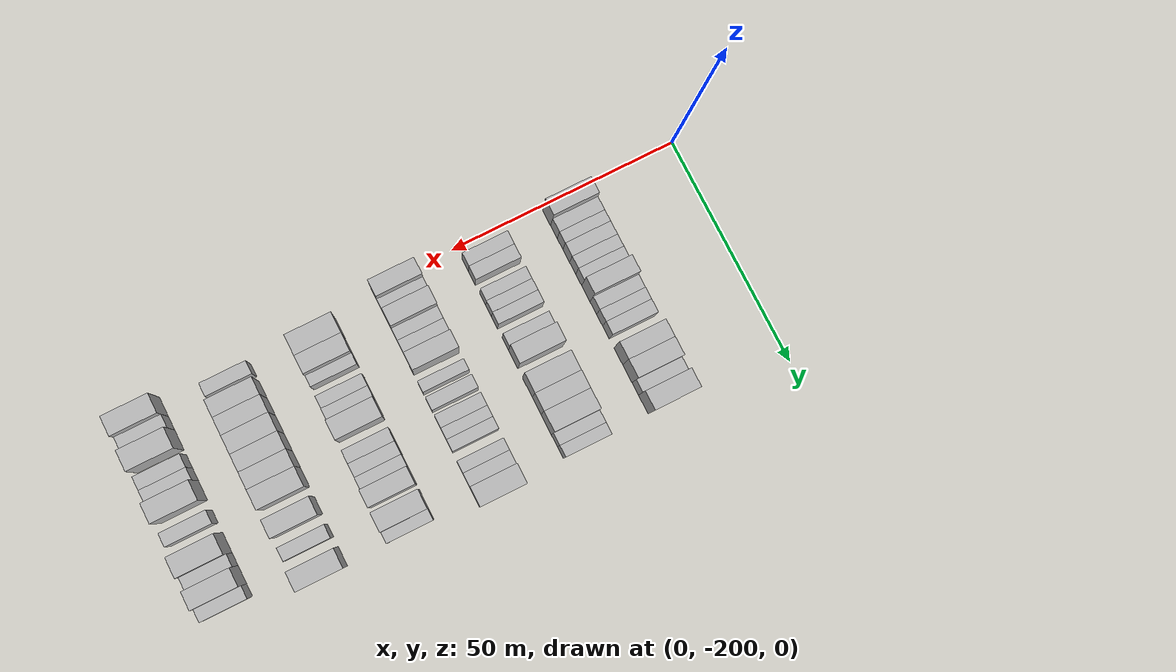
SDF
<sdf version="1.6">
 <world name="default">
  <model name="building_39">
   <static>1</static>
   <pose>25.0000 -197.4959 0 0.000000 0.000000 0.000000</pose>
   <link name="link">
    <pose>0 0 4.50 0 0 0</pose>
    <collision name="collision"><geometry><box><size>10.0000 3.6141 9.0000</size></box></geometry></collision>
    <visual name="visual">
     <cast_shadows>0</cast_shadows>
     <geometry><box><size>10.0000 3.6141 9.0000</size></box></geometry>
     <material>
      <script>
       <uri>model://HANNAS_wall/materials/scripts</uri>
       <uri>model://HANNAS_wall/materials/textures</uri>
       <name>vrc/HANNAS_wall</name>
      </script>
     </material>
    </visual>
   </link>
  </model>
  <model name="building_40">
   <static>1</static>
   <pose>25.0000 -194.2174 0 0.000000 0.000000 0.000000</pose>
   <link name="link">
    <pose>0 0 3.00 0 0 0</pose>
    <collision name="collision"><geometry><box><size>10.0000 2.9428 6.0000</size></box></geometry></collision>
    <visual name="visual">
     <cast_shadows>0</cast_shadows>
     <geometry><box><size>10.0000 2.9428 6.0000</size></box></geometry>
     <material>
      <script>
       <uri>model://HANNAS_wall/materials/scripts</uri>
       <uri>model://HANNAS_wall/materials/textures</uri>
       <name>vrc/HANNAS_wall</name>
      </script>
     </material>
    </visual>
   </link>
  </model>
  <model name="building_41">
   <static>1</static>
   <pose>25.0000 -191.4940 0 0.000000 0.000000 0.000000</pose>
   <link name="link">
    <pose>0 0 3.00 0 0 0</pose>
    <collision name="collision"><geometry><box><size>10.0000 2.5040 6.0000</size></box></geometry></collision>
    <visual name="visual">
     <cast_shadows>0</cast_shadows>
     <geometry><box><size>10.0000 2.5040 6.0000</size></box></geometry>
     <material>
      <script>
       <uri>model://HANNAS_wall/materials/scripts</uri>
       <uri>model://HANNAS_wall/materials/textures</uri>
       <name>vrc/HANNAS_wall</name>
      </script>
     </material>
    </visual>
   </link>
  </model>
  <model name="building_42">
   <static>1</static>
   <pose>25.0000 -188.7656 0 0.000000 0.000000 0.000000</pose>
   <link name="link">
    <pose>0 0 3.00 0 0 0</pose>
    <collision name="collision"><geometry><box><size>10.0000 2.9529 6.0000</size></box></geometry></collision>
    <visual name="visual">
     <cast_shadows>0</cast_shadows>
     <geometry><box><size>10.0000 2.9529 6.0000</size></box></geometry>
     <material>
      <script>
       <uri>model://HANNAS_wall/materials/scripts</uri>
       <uri>model://HANNAS_wall/materials/textures</uri>
       <name>vrc/HANNAS_wall</name>
      </script>
     </material>
    </visual>
   </link>
  </model>
  <model name="building_43">
   <static>1</static>
   <pose>25.0000 -185.9451 0 0.000000 0.000000 0.000000</pose>
   <link name="link">
    <pose>0 0 3.00 0 0 0</pose>
    <collision name="collision"><geometry><box><size>10.0000 2.6881 6.0000</size></box></geometry></collision>
    <visual name="visual">
     <cast_shadows>0</cast_shadows>
     <geometry><box><size>10.0000 2.6881 6.0000</size></box></geometry>
     <material>
      <script>
       <uri>model://HANNAS_wall/materials/scripts</uri>
       <uri>model://HANNAS_wall/materials/textures</uri>
       <name>vrc/HANNAS_wall</name>
      </script>
     </material>
    </visual>
   </link>
  </model>
  <model name="building_44">
   <static>1</static>
   <pose>25.0000 -183.2891 0 0.000000 0.000000 0.000000</pose>
   <link name="link">
    <pose>0 0 3.00 0 0 0</pose>
    <collision name="collision"><geometry><box><size>10.0000 2.6239 6.0000</size></box></geometry></collision>
    <visual name="visual">
     <cast_shadows>0</cast_shadows>
     <geometry><box><size>10.0000 2.6239 6.0000</size></box></geometry>
     <material>
      <script>
       <uri>model://HANNAS_wall/materials/scripts</uri>
       <uri>model://HANNAS_wall/materials/textures</uri>
       <name>vrc/HANNAS_wall</name>
      </script>
     </material>
    </visual>
   </link>
  </model>
  <model name="building_45">
   <static>1</static>
   <pose>25.0000 -180.1494 0 0.000000 0.000000 0.000000</pose>
   <link name="link">
    <pose>0 0 4.50 0 0 0</pose>
    <collision name="collision"><geometry><box><size>10.0000 3.6555 9.0000</size></box></geometry></collision>
    <visual name="visual">
     <cast_shadows>0</cast_shadows>
     <geometry><box><size>10.0000 3.6555 9.0000</size></box></geometry>
     <material>
      <script>
       <uri>model://HANNAS_wall/materials/scripts</uri>
       <uri>model://HANNAS_wall/materials/textures</uri>
       <name>vrc/HANNAS_wall</name>
      </script>
     </material>
    </visual>
   </link>
  </model>
  <model name="building_46">
   <static>1</static>
   <pose>25.0000 -176.8886 0 0.000000 0.000000 0.000000</pose>
   <link name="link">
    <pose>0 0 3.00 0 0 0</pose>
    <collision name="collision"><geometry><box><size>10.0000 2.8661 6.0000</size></box></geometry></collision>
    <visual name="visual">
     <cast_shadows>0</cast_shadows>
     <geometry><box><size>10.0000 2.8661 6.0000</size></box></geometry>
     <material>
      <script>
       <uri>model://HANNAS_wall/materials/scripts</uri>
       <uri>model://HANNAS_wall/materials/textures</uri>
       <name>vrc/HANNAS_wall</name>
      </script>
     </material>
    </visual>
   </link>
  </model>
  <model name="building_47">
   <static>1</static>
   <pose>25.0000 -174.1416 0 0.000000 0.000000 0.000000</pose>
   <link name="link">
    <pose>0 0 3.00 0 0 0</pose>
    <collision name="collision"><geometry><box><size>10.0000 2.6281 6.0000</size></box></geometry></collision>
    <visual name="visual">
     <cast_shadows>0</cast_shadows>
     <geometry><box><size>10.0000 2.6281 6.0000</size></box></geometry>
     <material>
      <script>
       <uri>model://HANNAS_wall/materials/scripts</uri>
       <uri>model://HANNAS_wall/materials/textures</uri>
       <name>vrc/HANNAS_wall</name>
      </script>
     </material>
    </visual>
   </link>
  </model>
  <model name="building_48">
   <static>1</static>
   <pose>25.0000 -171.3936 0 0.000000 0.000000 0.000000</pose>
   <link name="link">
    <pose>0 0 3.00 0 0 0</pose>
    <collision name="collision"><geometry><box><size>10.0000 2.8678 6.0000</size></box></geometry></collision>
    <visual name="visual">
     <cast_shadows>0</cast_shadows>
     <geometry><box><size>10.0000 2.8678 6.0000</size></box></geometry>
     <material>
      <script>
       <uri>model://HANNAS_wall/materials/scripts</uri>
       <uri>model://HANNAS_wall/materials/textures</uri>
       <name>vrc/HANNAS_wall</name>
      </script>
     </material>
    </visual>
   </link>
  </model>
  <model name="building_49">
   <static>1</static>
   <pose>25.0000 -166.0594 0 0.000000 0.000000 0.000000</pose>
   <link name="link">
    <pose>0 0 4.50 0 0 0</pose>
    <collision name="collision"><geometry><box><size>10.0000 3.8006 9.0000</size></box></geometry></collision>
    <visual name="visual">
     <cast_shadows>0</cast_shadows>
     <geometry><box><size>10.0000 3.8006 9.0000</size></box></geometry>
     <material>
      <script>
       <uri>model://HANNAS_wall/materials/scripts</uri>
       <uri>model://HANNAS_wall/materials/textures</uri>
       <name>vrc/HANNAS_wall</name>
      </script>
     </material>
    </visual>
   </link>
  </model>
  <model name="building_50">
   <static>1</static>
   <pose>25.0000 -162.1628 0 0.000000 0.000000 0.000000</pose>
   <link name="link">
    <pose>0 0 4.50 0 0 0</pose>
    <collision name="collision"><geometry><box><size>10.0000 3.9927 9.0000</size></box></geometry></collision>
    <visual name="visual">
     <cast_shadows>0</cast_shadows>
     <geometry><box><size>10.0000 3.9927 9.0000</size></box></geometry>
     <material>
      <script>
       <uri>model://HANNAS_wall/materials/scripts</uri>
       <uri>model://HANNAS_wall/materials/textures</uri>
       <name>vrc/HANNAS_wall</name>
      </script>
     </material>
    </visual>
   </link>
  </model>
  <model name="building_51">
   <static>1</static>
   <pose>25.0000 -158.7779 0 0.000000 0.000000 0.000000</pose>
   <link name="link">
    <pose>0 0 3.00 0 0 0</pose>
    <collision name="collision"><geometry><box><size>10.0000 2.7770 6.0000</size></box></geometry></collision>
    <visual name="visual">
     <cast_shadows>0</cast_shadows>
     <geometry><box><size>10.0000 2.7770 6.0000</size></box></geometry>
     <material>
      <script>
       <uri>model://HANNAS_wall/materials/scripts</uri>
       <uri>model://HANNAS_wall/materials/textures</uri>
       <name>vrc/HANNAS_wall</name>
      </script>
     </material>
    </visual>
   </link>
  </model>
  <model name="building_52">
   <static>1</static>
   <pose>25.0000 -155.3293 0 0.000000 0.000000 0.000000</pose>
   <link name="link">
    <pose>0 0 4.50 0 0 0</pose>
    <collision name="collision"><geometry><box><size>10.0000 4.1204 9.0000</size></box></geometry></collision>
    <visual name="visual">
     <cast_shadows>0</cast_shadows>
     <geometry><box><size>10.0000 4.1204 9.0000</size></box></geometry>
     <material>
      <script>
       <uri>model://HANNAS_wall/materials/scripts</uri>
       <uri>model://HANNAS_wall/materials/textures</uri>
       <name>vrc/HANNAS_wall</name>
      </script>
     </material>
    </visual>
   </link>
  </model>
  <model name="building_223">
   <static>1</static>
   <pose>44.0000 -196.0223 0 0.000000 0.000000 0.000000</pose>
   <link name="link">
    <pose>0 0 3.00 0 0 0</pose>
    <collision name="collision"><geometry><box><size>10.0000 2.9548 6.0000</size></box></geometry></collision>
    <visual name="visual">
     <cast_shadows>0</cast_shadows>
     <geometry><box><size>10.0000 2.9548 6.0000</size></box></geometry>
     <material>
      <script>
       <uri>model://HANNAS_wall/materials/scripts</uri>
       <uri>model://HANNAS_wall/materials/textures</uri>
       <name>vrc/HANNAS_wall</name>
      </script>
     </material>
    </visual>
   </link>
  </model>
  <model name="building_224">
   <static>1</static>
   <pose>44.0000 -193.0504 0 0.000000 0.000000 0.000000</pose>
   <link name="link">
    <pose>0 0 3.00 0 0 0</pose>
    <collision name="collision"><geometry><box><size>10.0000 2.9890 6.0000</size></box></geometry></collision>
    <visual name="visual">
     <cast_shadows>0</cast_shadows>
     <geometry><box><size>10.0000 2.9890 6.0000</size></box></geometry>
     <material>
      <script>
       <uri>model://HANNAS_wall/materials/scripts</uri>
       <uri>model://HANNAS_wall/materials/textures</uri>
       <name>vrc/HANNAS_wall</name>
      </script>
     </material>
    </visual>
   </link>
  </model>
  <model name="building_225">
   <static>1</static>
   <pose>44.0000 -188.2141 0 0.000000 0.000000 0.000000</pose>
   <link name="link">
    <pose>0 0 3.00 0 0 0</pose>
    <collision name="collision"><geometry><box><size>10.0000 2.6835 6.0000</size></box></geometry></collision>
    <visual name="visual">
     <cast_shadows>0</cast_shadows>
     <geometry><box><size>10.0000 2.6835 6.0000</size></box></geometry>
     <material>
      <script>
       <uri>model://HANNAS_wall/materials/scripts</uri>
       <uri>model://HANNAS_wall/materials/textures</uri>
       <name>vrc/HANNAS_wall</name>
      </script>
     </material>
    </visual>
   </link>
  </model>
  <model name="building_226">
   <static>1</static>
   <pose>44.0000 -185.5968 0 0.000000 0.000000 0.000000</pose>
   <link name="link">
    <pose>0 0 3.00 0 0 0</pose>
    <collision name="collision"><geometry><box><size>10.0000 2.5512 6.0000</size></box></geometry></collision>
    <visual name="visual">
     <cast_shadows>0</cast_shadows>
     <geometry><box><size>10.0000 2.5512 6.0000</size></box></geometry>
     <material>
      <script>
       <uri>model://HANNAS_wall/materials/scripts</uri>
       <uri>model://HANNAS_wall/materials/textures</uri>
       <name>vrc/HANNAS_wall</name>
      </script>
     </material>
    </visual>
   </link>
  </model>
  <model name="building_227">
   <static>1</static>
   <pose>44.0000 -182.9923 0 0.000000 0.000000 0.000000</pose>
   <link name="link">
    <pose>0 0 3.00 0 0 0</pose>
    <collision name="collision"><geometry><box><size>10.0000 2.6577 6.0000</size></box></geometry></collision>
    <visual name="visual">
     <cast_shadows>0</cast_shadows>
     <geometry><box><size>10.0000 2.6577 6.0000</size></box></geometry>
     <material>
      <script>
       <uri>model://HANNAS_wall/materials/scripts</uri>
       <uri>model://HANNAS_wall/materials/textures</uri>
       <name>vrc/HANNAS_wall</name>
      </script>
     </material>
    </visual>
   </link>
  </model>
  <model name="building_228">
   <static>1</static>
   <pose>44.0000 -178.2183 0 0.000000 0.000000 0.000000</pose>
   <link name="link">
    <pose>0 0 3.00 0 0 0</pose>
    <collision name="collision"><geometry><box><size>10.0000 2.8905 6.0000</size></box></geometry></collision>
    <visual name="visual">
     <cast_shadows>0</cast_shadows>
     <geometry><box><size>10.0000 2.8905 6.0000</size></box></geometry>
     <material>
      <script>
       <uri>model://HANNAS_wall/materials/scripts</uri>
       <uri>model://HANNAS_wall/materials/textures</uri>
       <name>vrc/HANNAS_wall</name>
      </script>
     </material>
    </visual>
   </link>
  </model>
  <model name="building_229">
   <static>1</static>
   <pose>44.0000 -174.7492 0 0.000000 0.000000 0.000000</pose>
   <link name="link">
    <pose>0 0 4.50 0 0 0</pose>
    <collision name="collision"><geometry><box><size>10.0000 4.0476 9.0000</size></box></geometry></collision>
    <visual name="visual">
     <cast_shadows>0</cast_shadows>
     <geometry><box><size>10.0000 4.0476 9.0000</size></box></geometry>
     <material>
      <script>
       <uri>model://HANNAS_wall/materials/scripts</uri>
       <uri>model://HANNAS_wall/materials/textures</uri>
       <name>vrc/HANNAS_wall</name>
      </script>
     </material>
    </visual>
   </link>
  </model>
  <model name="building_230">
   <static>1</static>
   <pose>44.0000 -168.5488 0 0.000000 0.000000 0.000000</pose>
   <link name="link">
    <pose>0 0 4.50 0 0 0</pose>
    <collision name="collision"><geometry><box><size>10.0000 4.3531 9.0000</size></box></geometry></collision>
    <visual name="visual">
     <cast_shadows>0</cast_shadows>
     <geometry><box><size>10.0000 4.3531 9.0000</size></box></geometry>
     <material>
      <script>
       <uri>model://HANNAS_wall/materials/scripts</uri>
       <uri>model://HANNAS_wall/materials/textures</uri>
       <name>vrc/HANNAS_wall</name>
      </script>
     </material>
    </visual>
   </link>
  </model>
  <model name="building_231">
   <static>1</static>
   <pose>44.0000 -164.4514 0 0.000000 0.000000 0.000000</pose>
   <link name="link">
    <pose>0 0 4.50 0 0 0</pose>
    <collision name="collision"><geometry><box><size>10.0000 3.8418 9.0000</size></box></geometry></collision>
    <visual name="visual">
     <cast_shadows>0</cast_shadows>
     <geometry><box><size>10.0000 3.8418 9.0000</size></box></geometry>
     <material>
      <script>
       <uri>model://HANNAS_wall/materials/scripts</uri>
       <uri>model://HANNAS_wall/materials/textures</uri>
       <name>vrc/HANNAS_wall</name>
      </script>
     </material>
    </visual>
   </link>
  </model>
  <model name="building_232">
   <static>1</static>
   <pose>44.0000 -160.3014 0 0.000000 0.000000 0.000000</pose>
   <link name="link">
    <pose>0 0 4.50 0 0 0</pose>
    <collision name="collision"><geometry><box><size>10.0000 4.4582 9.0000</size></box></geometry></collision>
    <visual name="visual">
     <cast_shadows>0</cast_shadows>
     <geometry><box><size>10.0000 4.4582 9.0000</size></box></geometry>
     <material>
      <script>
       <uri>model://HANNAS_wall/materials/scripts</uri>
       <uri>model://HANNAS_wall/materials/textures</uri>
       <name>vrc/HANNAS_wall</name>
      </script>
     </material>
    </visual>
   </link>
  </model>
  <model name="building_233">
   <static>1</static>
   <pose>44.0000 -156.7482 0 0.000000 0.000000 0.000000</pose>
   <link name="link">
    <pose>0 0 3.00 0 0 0</pose>
    <collision name="collision"><geometry><box><size>10.0000 2.6480 6.0000</size></box></geometry></collision>
    <visual name="visual">
     <cast_shadows>0</cast_shadows>
     <geometry><box><size>10.0000 2.6480 6.0000</size></box></geometry>
     <material>
      <script>
       <uri>model://HANNAS_wall/materials/scripts</uri>
       <uri>model://HANNAS_wall/materials/textures</uri>
       <name>vrc/HANNAS_wall</name>
      </script>
     </material>
    </visual>
   </link>
  </model>
  <model name="building_234">
   <static>1</static>
   <pose>44.0000 -154.1500 0 0.000000 0.000000 0.000000</pose>
   <link name="link">
    <pose>0 0 3.00 0 0 0</pose>
    <collision name="collision"><geometry><box><size>10.0000 2.5484 6.0000</size></box></geometry></collision>
    <visual name="visual">
     <cast_shadows>0</cast_shadows>
     <geometry><box><size>10.0000 2.5484 6.0000</size></box></geometry>
     <material>
      <script>
       <uri>model://HANNAS_wall/materials/scripts</uri>
       <uri>model://HANNAS_wall/materials/textures</uri>
       <name>vrc/HANNAS_wall</name>
      </script>
     </material>
    </visual>
   </link>
  </model>
  <model name="building_396">
   <static>1</static>
   <pose>63.0000 -198.5339 0 0.000000 0.000000 0.000000</pose>
   <link name="link">
    <pose>0 0 4.50 0 0 0</pose>
    <collision name="collision"><geometry><box><size>10.0000 3.6355 9.0000</size></box></geometry></collision>
    <visual name="visual">
     <cast_shadows>0</cast_shadows>
     <geometry><box><size>10.0000 3.6355 9.0000</size></box></geometry>
     <material>
      <script>
       <uri>model://HANNAS_wall/materials/scripts</uri>
       <uri>model://HANNAS_wall/materials/textures</uri>
       <name>vrc/HANNAS_wall</name>
      </script>
     </material>
    </visual>
   </link>
  </model>
  <model name="building_397">
   <static>1</static>
   <pose>63.0000 -195.4510 0 0.000000 0.000000 0.000000</pose>
   <link name="link">
    <pose>0 0 3.00 0 0 0</pose>
    <collision name="collision"><geometry><box><size>10.0000 2.5305 6.0000</size></box></geometry></collision>
    <visual name="visual">
     <cast_shadows>0</cast_shadows>
     <geometry><box><size>10.0000 2.5305 6.0000</size></box></geometry>
     <material>
      <script>
       <uri>model://HANNAS_wall/materials/scripts</uri>
       <uri>model://HANNAS_wall/materials/textures</uri>
       <name>vrc/HANNAS_wall</name>
      </script>
     </material>
    </visual>
   </link>
  </model>
  <model name="building_398">
   <static>1</static>
   <pose>63.0000 -192.2279 0 0.000000 0.000000 0.000000</pose>
   <link name="link">
    <pose>0 0 4.50 0 0 0</pose>
    <collision name="collision"><geometry><box><size>10.0000 3.9156 9.0000</size></box></geometry></collision>
    <visual name="visual">
     <cast_shadows>0</cast_shadows>
     <geometry><box><size>10.0000 3.9156 9.0000</size></box></geometry>
     <material>
      <script>
       <uri>model://HANNAS_wall/materials/scripts</uri>
       <uri>model://HANNAS_wall/materials/textures</uri>
       <name>vrc/HANNAS_wall</name>
      </script>
     </material>
    </visual>
   </link>
  </model>
  <model name="building_399">
   <static>1</static>
   <pose>63.0000 -188.9342 0 0.000000 0.000000 0.000000</pose>
   <link name="link">
    <pose>0 0 3.00 0 0 0</pose>
    <collision name="collision"><geometry><box><size>10.0000 2.6719 6.0000</size></box></geometry></collision>
    <visual name="visual">
     <cast_shadows>0</cast_shadows>
     <geometry><box><size>10.0000 2.6719 6.0000</size></box></geometry>
     <material>
      <script>
       <uri>model://HANNAS_wall/materials/scripts</uri>
       <uri>model://HANNAS_wall/materials/textures</uri>
       <name>vrc/HANNAS_wall</name>
      </script>
     </material>
    </visual>
   </link>
  </model>
  <model name="building_400">
   <static>1</static>
   <pose>63.0000 -186.1005 0 0.000000 0.000000 0.000000</pose>
   <link name="link">
    <pose>0 0 3.00 0 0 0</pose>
    <collision name="collision"><geometry><box><size>10.0000 2.9955 6.0000</size></box></geometry></collision>
    <visual name="visual">
     <cast_shadows>0</cast_shadows>
     <geometry><box><size>10.0000 2.9955 6.0000</size></box></geometry>
     <material>
      <script>
       <uri>model://HANNAS_wall/materials/scripts</uri>
       <uri>model://HANNAS_wall/materials/textures</uri>
       <name>vrc/HANNAS_wall</name>
      </script>
     </material>
    </visual>
   </link>
  </model>
  <model name="building_401">
   <static>1</static>
   <pose>63.0000 -182.6701 0 0.000000 0.000000 0.000000</pose>
   <link name="link">
    <pose>0 0 4.50 0 0 0</pose>
    <collision name="collision"><geometry><box><size>10.0000 3.8652 9.0000</size></box></geometry></collision>
    <visual name="visual">
     <cast_shadows>0</cast_shadows>
     <geometry><box><size>10.0000 3.8652 9.0000</size></box></geometry>
     <material>
      <script>
       <uri>model://HANNAS_wall/materials/scripts</uri>
       <uri>model://HANNAS_wall/materials/textures</uri>
       <name>vrc/HANNAS_wall</name>
      </script>
     </material>
    </visual>
   </link>
  </model>
  <model name="building_402">
   <static>1</static>
   <pose>63.0000 -177.5221 0 0.000000 0.000000 0.000000</pose>
   <link name="link">
    <pose>0 0 3.00 0 0 0</pose>
    <collision name="collision"><geometry><box><size>10.0000 2.4307 6.0000</size></box></geometry></collision>
    <visual name="visual">
     <cast_shadows>0</cast_shadows>
     <geometry><box><size>10.0000 2.4307 6.0000</size></box></geometry>
     <material>
      <script>
       <uri>model://HANNAS_wall/materials/scripts</uri>
       <uri>model://HANNAS_wall/materials/textures</uri>
       <name>vrc/HANNAS_wall</name>
      </script>
     </material>
    </visual>
   </link>
  </model>
  <model name="building_403">
   <static>1</static>
   <pose>63.0000 -173.8610 0 0.000000 0.000000 0.000000</pose>
   <link name="link">
    <pose>0 0 3.00 0 0 0</pose>
    <collision name="collision"><geometry><box><size>10.0000 2.8916 6.0000</size></box></geometry></collision>
    <visual name="visual">
     <cast_shadows>0</cast_shadows>
     <geometry><box><size>10.0000 2.8916 6.0000</size></box></geometry>
     <material>
      <script>
       <uri>model://HANNAS_wall/materials/scripts</uri>
       <uri>model://HANNAS_wall/materials/textures</uri>
       <name>vrc/HANNAS_wall</name>
      </script>
     </material>
    </visual>
   </link>
  </model>
  <model name="building_404">
   <static>1</static>
   <pose>63.0000 -170.0073 0 0.000000 0.000000 0.000000</pose>
   <link name="link">
    <pose>0 0 3.00 0 0 0</pose>
    <collision name="collision"><geometry><box><size>10.0000 2.8158 6.0000</size></box></geometry></collision>
    <visual name="visual">
     <cast_shadows>0</cast_shadows>
     <geometry><box><size>10.0000 2.8158 6.0000</size></box></geometry>
     <material>
      <script>
       <uri>model://HANNAS_wall/materials/scripts</uri>
       <uri>model://HANNAS_wall/materials/textures</uri>
       <name>vrc/HANNAS_wall</name>
      </script>
     </material>
    </visual>
   </link>
  </model>
  <model name="building_405">
   <static>1</static>
   <pose>63.0000 -167.3830 0 0.000000 0.000000 0.000000</pose>
   <link name="link">
    <pose>0 0 3.00 0 0 0</pose>
    <collision name="collision"><geometry><box><size>10.0000 2.4328 6.0000</size></box></geometry></collision>
    <visual name="visual">
     <cast_shadows>0</cast_shadows>
     <geometry><box><size>10.0000 2.4328 6.0000</size></box></geometry>
     <material>
      <script>
       <uri>model://HANNAS_wall/materials/scripts</uri>
       <uri>model://HANNAS_wall/materials/textures</uri>
       <name>vrc/HANNAS_wall</name>
      </script>
     </material>
    </visual>
   </link>
  </model>
  <model name="building_406">
   <static>1</static>
   <pose>63.0000 -164.8621 0 0.000000 0.000000 0.000000</pose>
   <link name="link">
    <pose>0 0 3.00 0 0 0</pose>
    <collision name="collision"><geometry><box><size>10.0000 2.6091 6.0000</size></box></geometry></collision>
    <visual name="visual">
     <cast_shadows>0</cast_shadows>
     <geometry><box><size>10.0000 2.6091 6.0000</size></box></geometry>
     <material>
      <script>
       <uri>model://HANNAS_wall/materials/scripts</uri>
       <uri>model://HANNAS_wall/materials/textures</uri>
       <name>vrc/HANNAS_wall</name>
      </script>
     </material>
    </visual>
   </link>
  </model>
  <model name="building_407">
   <static>1</static>
   <pose>63.0000 -160.2697 0 0.000000 0.000000 0.000000</pose>
   <link name="link">
    <pose>0 0 3.00 0 0 0</pose>
    <collision name="collision"><geometry><box><size>10.0000 2.5756 6.0000</size></box></geometry></collision>
    <visual name="visual">
     <cast_shadows>0</cast_shadows>
     <geometry><box><size>10.0000 2.5756 6.0000</size></box></geometry>
     <material>
      <script>
       <uri>model://HANNAS_wall/materials/scripts</uri>
       <uri>model://HANNAS_wall/materials/textures</uri>
       <name>vrc/HANNAS_wall</name>
      </script>
     </material>
    </visual>
   </link>
  </model>
  <model name="building_408">
   <static>1</static>
   <pose>63.0000 -157.5029 0 0.000000 0.000000 0.000000</pose>
   <link name="link">
    <pose>0 0 3.00 0 0 0</pose>
    <collision name="collision"><geometry><box><size>10.0000 2.9581 6.0000</size></box></geometry></collision>
    <visual name="visual">
     <cast_shadows>0</cast_shadows>
     <geometry><box><size>10.0000 2.9581 6.0000</size></box></geometry>
     <material>
      <script>
       <uri>model://HANNAS_wall/materials/scripts</uri>
       <uri>model://HANNAS_wall/materials/textures</uri>
       <name>vrc/HANNAS_wall</name>
      </script>
     </material>
    </visual>
   </link>
  </model>
  <model name="building_409">
   <static>1</static>
   <pose>63.0000 -153.8929 0 0.000000 0.000000 0.000000</pose>
   <link name="link">
    <pose>0 0 4.50 0 0 0</pose>
    <collision name="collision"><geometry><box><size>10.0000 4.2618 9.0000</size></box></geometry></collision>
    <visual name="visual">
     <cast_shadows>0</cast_shadows>
     <geometry><box><size>10.0000 4.2618 9.0000</size></box></geometry>
     <material>
      <script>
       <uri>model://HANNAS_wall/materials/scripts</uri>
       <uri>model://HANNAS_wall/materials/textures</uri>
       <name>vrc/HANNAS_wall</name>
      </script>
     </material>
    </visual>
   </link>
  </model>
  <model name="building_558">
   <static>1</static>
   <pose>82.0000 -195.6227 0 0.000000 0.000000 0.000000</pose>
   <link name="link">
    <pose>0 0 4.50 0 0 0</pose>
    <collision name="collision"><geometry><box><size>10.0000 4.4819 9.0000</size></box></geometry></collision>
    <visual name="visual">
     <cast_shadows>0</cast_shadows>
     <geometry><box><size>10.0000 4.4819 9.0000</size></box></geometry>
     <material>
      <script>
       <uri>model://HANNAS_wall/materials/scripts</uri>
       <uri>model://HANNAS_wall/materials/textures</uri>
       <name>vrc/HANNAS_wall</name>
      </script>
     </material>
    </visual>
   </link>
  </model>
  <model name="building_559">
   <static>1</static>
   <pose>82.0000 -191.3908 0 0.000000 0.000000 0.000000</pose>
   <link name="link">
    <pose>0 0 4.50 0 0 0</pose>
    <collision name="collision"><geometry><box><size>10.0000 3.9819 9.0000</size></box></geometry></collision>
    <visual name="visual">
     <cast_shadows>0</cast_shadows>
     <geometry><box><size>10.0000 3.9819 9.0000</size></box></geometry>
     <material>
      <script>
       <uri>model://HANNAS_wall/materials/scripts</uri>
       <uri>model://HANNAS_wall/materials/textures</uri>
       <name>vrc/HANNAS_wall</name>
      </script>
     </material>
    </visual>
   </link>
  </model>
  <model name="building_560">
   <static>1</static>
   <pose>82.0000 -188.1809 0 0.000000 0.000000 0.000000</pose>
   <link name="link">
    <pose>0 0 3.00 0 0 0</pose>
    <collision name="collision"><geometry><box><size>10.0000 2.4380 6.0000</size></box></geometry></collision>
    <visual name="visual">
     <cast_shadows>0</cast_shadows>
     <geometry><box><size>10.0000 2.4380 6.0000</size></box></geometry>
     <material>
      <script>
       <uri>model://HANNAS_wall/materials/scripts</uri>
       <uri>model://HANNAS_wall/materials/textures</uri>
       <name>vrc/HANNAS_wall</name>
      </script>
     </material>
    </visual>
   </link>
  </model>
  <model name="building_561">
   <static>1</static>
   <pose>82.0000 -183.6275 0 0.000000 0.000000 0.000000</pose>
   <link name="link">
    <pose>0 0 3.00 0 0 0</pose>
    <collision name="collision"><geometry><box><size>10.0000 2.6688 6.0000</size></box></geometry></collision>
    <visual name="visual">
     <cast_shadows>0</cast_shadows>
     <geometry><box><size>10.0000 2.6688 6.0000</size></box></geometry>
     <material>
      <script>
       <uri>model://HANNAS_wall/materials/scripts</uri>
       <uri>model://HANNAS_wall/materials/textures</uri>
       <name>vrc/HANNAS_wall</name>
      </script>
     </material>
    </visual>
   </link>
  </model>
  <model name="building_562">
   <static>1</static>
   <pose>82.0000 -180.9532 0 0.000000 0.000000 0.000000</pose>
   <link name="link">
    <pose>0 0 3.00 0 0 0</pose>
    <collision name="collision"><geometry><box><size>10.0000 2.6799 6.0000</size></box></geometry></collision>
    <visual name="visual">
     <cast_shadows>0</cast_shadows>
     <geometry><box><size>10.0000 2.6799 6.0000</size></box></geometry>
     <material>
      <script>
       <uri>model://HANNAS_wall/materials/scripts</uri>
       <uri>model://HANNAS_wall/materials/textures</uri>
       <name>vrc/HANNAS_wall</name>
      </script>
     </material>
    </visual>
   </link>
  </model>
  <model name="building_563">
   <static>1</static>
   <pose>82.0000 -177.4640 0 0.000000 0.000000 0.000000</pose>
   <link name="link">
    <pose>0 0 4.50 0 0 0</pose>
    <collision name="collision"><geometry><box><size>10.0000 4.2984 9.0000</size></box></geometry></collision>
    <visual name="visual">
     <cast_shadows>0</cast_shadows>
     <geometry><box><size>10.0000 4.2984 9.0000</size></box></geometry>
     <material>
      <script>
       <uri>model://HANNAS_wall/materials/scripts</uri>
       <uri>model://HANNAS_wall/materials/textures</uri>
       <name>vrc/HANNAS_wall</name>
      </script>
     </material>
    </visual>
   </link>
  </model>
  <model name="building_564">
   <static>1</static>
   <pose>82.0000 -171.8599 0 0.000000 0.000000 0.000000</pose>
   <link name="link">
    <pose>0 0 3.00 0 0 0</pose>
    <collision name="collision"><geometry><box><size>10.0000 2.9099 6.0000</size></box></geometry></collision>
    <visual name="visual">
     <cast_shadows>0</cast_shadows>
     <geometry><box><size>10.0000 2.9099 6.0000</size></box></geometry>
     <material>
      <script>
       <uri>model://HANNAS_wall/materials/scripts</uri>
       <uri>model://HANNAS_wall/materials/textures</uri>
       <name>vrc/HANNAS_wall</name>
      </script>
     </material>
    </visual>
   </link>
  </model>
  <model name="building_565">
   <static>1</static>
   <pose>82.0000 -168.9702 0 0.000000 0.000000 0.000000</pose>
   <link name="link">
    <pose>0 0 3.00 0 0 0</pose>
    <collision name="collision"><geometry><box><size>10.0000 2.8695 6.0000</size></box></geometry></collision>
    <visual name="visual">
     <cast_shadows>0</cast_shadows>
     <geometry><box><size>10.0000 2.8695 6.0000</size></box></geometry>
     <material>
      <script>
       <uri>model://HANNAS_wall/materials/scripts</uri>
       <uri>model://HANNAS_wall/materials/textures</uri>
       <name>vrc/HANNAS_wall</name>
      </script>
     </material>
    </visual>
   </link>
  </model>
  <model name="building_566">
   <static>1</static>
   <pose>82.0000 -166.2060 0 0.000000 0.000000 0.000000</pose>
   <link name="link">
    <pose>0 0 3.00 0 0 0</pose>
    <collision name="collision"><geometry><box><size>10.0000 2.6589 6.0000</size></box></geometry></collision>
    <visual name="visual">
     <cast_shadows>0</cast_shadows>
     <geometry><box><size>10.0000 2.6589 6.0000</size></box></geometry>
     <material>
      <script>
       <uri>model://HANNAS_wall/materials/scripts</uri>
       <uri>model://HANNAS_wall/materials/textures</uri>
       <name>vrc/HANNAS_wall</name>
      </script>
     </material>
    </visual>
   </link>
  </model>
  <model name="building_567">
   <static>1</static>
   <pose>82.0000 -162.9906 0 0.000000 0.000000 0.000000</pose>
   <link name="link">
    <pose>0 0 4.50 0 0 0</pose>
    <collision name="collision"><geometry><box><size>10.0000 3.7718 9.0000</size></box></geometry></collision>
    <visual name="visual">
     <cast_shadows>0</cast_shadows>
     <geometry><box><size>10.0000 3.7718 9.0000</size></box></geometry>
     <material>
      <script>
       <uri>model://HANNAS_wall/materials/scripts</uri>
       <uri>model://HANNAS_wall/materials/textures</uri>
       <name>vrc/HANNAS_wall</name>
      </script>
     </material>
    </visual>
   </link>
  </model>
  <model name="building_568">
   <static>1</static>
   <pose>82.0000 -158.0215 0 0.000000 0.000000 0.000000</pose>
   <link name="link">
    <pose>0 0 4.50 0 0 0</pose>
    <collision name="collision"><geometry><box><size>10.0000 4.1664 9.0000</size></box></geometry></collision>
    <visual name="visual">
     <cast_shadows>0</cast_shadows>
     <geometry><box><size>10.0000 4.1664 9.0000</size></box></geometry>
     <material>
      <script>
       <uri>model://HANNAS_wall/materials/scripts</uri>
       <uri>model://HANNAS_wall/materials/textures</uri>
       <name>vrc/HANNAS_wall</name>
      </script>
     </material>
    </visual>
   </link>
  </model>
  <model name="building_569">
   <static>1</static>
   <pose>82.0000 -154.7222 0 0.000000 0.000000 0.000000</pose>
   <link name="link">
    <pose>0 0 3.00 0 0 0</pose>
    <collision name="collision"><geometry><box><size>10.0000 2.4321 6.0000</size></box></geometry></collision>
    <visual name="visual">
     <cast_shadows>0</cast_shadows>
     <geometry><box><size>10.0000 2.4321 6.0000</size></box></geometry>
     <material>
      <script>
       <uri>model://HANNAS_wall/materials/scripts</uri>
       <uri>model://HANNAS_wall/materials/textures</uri>
       <name>vrc/HANNAS_wall</name>
      </script>
     </material>
    </visual>
   </link>
  </model>
  <model name="building_733">
   <static>1</static>
   <pose>101.0000 -195.7880 0 0.000000 0.000000 0.000000</pose>
   <link name="link">
    <pose>0 0 3.00 0 0 0</pose>
    <collision name="collision"><geometry><box><size>10.0000 2.8690 6.0000</size></box></geometry></collision>
    <visual name="visual">
     <cast_shadows>0</cast_shadows>
     <geometry><box><size>10.0000 2.8690 6.0000</size></box></geometry>
     <material>
      <script>
       <uri>model://HANNAS_wall/materials/scripts</uri>
       <uri>model://HANNAS_wall/materials/textures</uri>
       <name>vrc/HANNAS_wall</name>
      </script>
     </material>
    </visual>
   </link>
  </model>
  <model name="building_734">
   <static>1</static>
   <pose>101.0000 -191.4734 0 0.000000 0.000000 0.000000</pose>
   <link name="link">
    <pose>0 0 4.50 0 0 0</pose>
    <collision name="collision"><geometry><box><size>10.0000 3.7602 9.0000</size></box></geometry></collision>
    <visual name="visual">
     <cast_shadows>0</cast_shadows>
     <geometry><box><size>10.0000 3.7602 9.0000</size></box></geometry>
     <material>
      <script>
       <uri>model://HANNAS_wall/materials/scripts</uri>
       <uri>model://HANNAS_wall/materials/textures</uri>
       <name>vrc/HANNAS_wall</name>
      </script>
     </material>
    </visual>
   </link>
  </model>
  <model name="building_735">
   <static>1</static>
   <pose>101.0000 -187.6899 0 0.000000 0.000000 0.000000</pose>
   <link name="link">
    <pose>0 0 4.50 0 0 0</pose>
    <collision name="collision"><geometry><box><size>10.0000 3.8070 9.0000</size></box></geometry></collision>
    <visual name="visual">
     <cast_shadows>0</cast_shadows>
     <geometry><box><size>10.0000 3.8070 9.0000</size></box></geometry>
     <material>
      <script>
       <uri>model://HANNAS_wall/materials/scripts</uri>
       <uri>model://HANNAS_wall/materials/textures</uri>
       <name>vrc/HANNAS_wall</name>
      </script>
     </material>
    </visual>
   </link>
  </model>
  <model name="building_736">
   <static>1</static>
   <pose>101.0000 -183.7917 0 0.000000 0.000000 0.000000</pose>
   <link name="link">
    <pose>0 0 4.50 0 0 0</pose>
    <collision name="collision"><geometry><box><size>10.0000 3.9894 9.0000</size></box></geometry></collision>
    <visual name="visual">
     <cast_shadows>0</cast_shadows>
     <geometry><box><size>10.0000 3.9894 9.0000</size></box></geometry>
     <material>
      <script>
       <uri>model://HANNAS_wall/materials/scripts</uri>
       <uri>model://HANNAS_wall/materials/textures</uri>
       <name>vrc/HANNAS_wall</name>
      </script>
     </material>
    </visual>
   </link>
  </model>
  <model name="building_737">
   <static>1</static>
   <pose>101.0000 -179.9096 0 0.000000 0.000000 0.000000</pose>
   <link name="link">
    <pose>0 0 4.50 0 0 0</pose>
    <collision name="collision"><geometry><box><size>10.0000 3.7747 9.0000</size></box></geometry></collision>
    <visual name="visual">
     <cast_shadows>0</cast_shadows>
     <geometry><box><size>10.0000 3.7747 9.0000</size></box></geometry>
     <material>
      <script>
       <uri>model://HANNAS_wall/materials/scripts</uri>
       <uri>model://HANNAS_wall/materials/textures</uri>
       <name>vrc/HANNAS_wall</name>
      </script>
     </material>
    </visual>
   </link>
  </model>
  <model name="building_738">
   <static>1</static>
   <pose>101.0000 -176.1786 0 0.000000 0.000000 0.000000</pose>
   <link name="link">
    <pose>0 0 4.50 0 0 0</pose>
    <collision name="collision"><geometry><box><size>10.0000 3.6872 9.0000</size></box></geometry></collision>
    <visual name="visual">
     <cast_shadows>0</cast_shadows>
     <geometry><box><size>10.0000 3.6872 9.0000</size></box></geometry>
     <material>
      <script>
       <uri>model://HANNAS_wall/materials/scripts</uri>
       <uri>model://HANNAS_wall/materials/textures</uri>
       <name>vrc/HANNAS_wall</name>
      </script>
     </material>
    </visual>
   </link>
  </model>
  <model name="building_739">
   <static>1</static>
   <pose>101.0000 -172.1977 0 0.000000 0.000000 0.000000</pose>
   <link name="link">
    <pose>0 0 4.50 0 0 0</pose>
    <collision name="collision"><geometry><box><size>10.0000 4.2745 9.0000</size></box></geometry></collision>
    <visual name="visual">
     <cast_shadows>0</cast_shadows>
     <geometry><box><size>10.0000 4.2745 9.0000</size></box></geometry>
     <material>
      <script>
       <uri>model://HANNAS_wall/materials/scripts</uri>
       <uri>model://HANNAS_wall/materials/textures</uri>
       <name>vrc/HANNAS_wall</name>
      </script>
     </material>
    </visual>
   </link>
  </model>
  <model name="building_740">
   <static>1</static>
   <pose>101.0000 -166.1044 0 0.000000 0.000000 0.000000</pose>
   <link name="link">
    <pose>0 0 4.50 0 0 0</pose>
    <collision name="collision"><geometry><box><size>10.0000 3.9121 9.0000</size></box></geometry></collision>
    <visual name="visual">
     <cast_shadows>0</cast_shadows>
     <geometry><box><size>10.0000 3.9121 9.0000</size></box></geometry>
     <material>
      <script>
       <uri>model://HANNAS_wall/materials/scripts</uri>
       <uri>model://HANNAS_wall/materials/textures</uri>
       <name>vrc/HANNAS_wall</name>
      </script>
     </material>
    </visual>
   </link>
  </model>
  <model name="building_741">
   <static>1</static>
   <pose>101.0000 -160.6951 0 0.000000 0.000000 0.000000</pose>
   <link name="link">
    <pose>0 0 3.00 0 0 0</pose>
    <collision name="collision"><geometry><box><size>10.0000 2.9065 6.0000</size></box></geometry></collision>
    <visual name="visual">
     <cast_shadows>0</cast_shadows>
     <geometry><box><size>10.0000 2.9065 6.0000</size></box></geometry>
     <material>
      <script>
       <uri>model://HANNAS_wall/materials/scripts</uri>
       <uri>model://HANNAS_wall/materials/textures</uri>
       <name>vrc/HANNAS_wall</name>
      </script>
     </material>
    </visual>
   </link>
  </model>
  <model name="building_742">
   <static>1</static>
   <pose>101.0000 -155.1457 0 0.000000 0.000000 0.000000</pose>
   <link name="link">
    <pose>0 0 4.50 0 0 0</pose>
    <collision name="collision"><geometry><box><size>10.0000 4.1924 9.0000</size></box></geometry></collision>
    <visual name="visual">
     <cast_shadows>0</cast_shadows>
     <geometry><box><size>10.0000 4.1924 9.0000</size></box></geometry>
     <material>
      <script>
       <uri>model://HANNAS_wall/materials/scripts</uri>
       <uri>model://HANNAS_wall/materials/textures</uri>
       <name>vrc/HANNAS_wall</name>
      </script>
     </material>
    </visual>
   </link>
  </model>
  <model name="building_893">
   <static>1</static>
   <pose>120.0000 -197.1805 0 0.000000 0.000000 0.000000</pose>
   <link name="link">
    <pose>0 0 4.50 0 0 0</pose>
    <collision name="collision"><geometry><box><size>10.0000 4.2599 9.0000</size></box></geometry></collision>
    <visual name="visual">
     <cast_shadows>0</cast_shadows>
     <geometry><box><size>10.0000 4.2599 9.0000</size></box></geometry>
     <material>
      <script>
       <uri>model://HANNAS_wall/materials/scripts</uri>
       <uri>model://HANNAS_wall/materials/textures</uri>
       <name>vrc/HANNAS_wall</name>
      </script>
     </material>
    </visual>
   </link>
  </model>
  <model name="building_894">
   <static>1</static>
   <pose>120.0000 -193.5710 0 0.000000 0.000000 0.000000</pose>
   <link name="link">
    <pose>0 0 3.00 0 0 0</pose>
    <collision name="collision"><geometry><box><size>10.0000 2.9591 6.0000</size></box></geometry></collision>
    <visual name="visual">
     <cast_shadows>0</cast_shadows>
     <geometry><box><size>10.0000 2.9591 6.0000</size></box></geometry>
     <material>
      <script>
       <uri>model://HANNAS_wall/materials/scripts</uri>
       <uri>model://HANNAS_wall/materials/textures</uri>
       <name>vrc/HANNAS_wall</name>
      </script>
     </material>
    </visual>
   </link>
  </model>
  <model name="building_895">
   <static>1</static>
   <pose>120.0000 -189.8466 0 0.000000 0.000000 0.000000</pose>
   <link name="link">
    <pose>0 0 4.50 0 0 0</pose>
    <collision name="collision"><geometry><box><size>10.0000 4.4898 9.0000</size></box></geometry></collision>
    <visual name="visual">
     <cast_shadows>0</cast_shadows>
     <geometry><box><size>10.0000 4.4898 9.0000</size></box></geometry>
     <material>
      <script>
       <uri>model://HANNAS_wall/materials/scripts</uri>
       <uri>model://HANNAS_wall/materials/textures</uri>
       <name>vrc/HANNAS_wall</name>
      </script>
     </material>
    </visual>
   </link>
  </model>
  <model name="building_896">
   <static>1</static>
   <pose>120.0000 -185.1442 0 0.000000 0.000000 0.000000</pose>
   <link name="link">
    <pose>0 0 3.00 0 0 0</pose>
    <collision name="collision"><geometry><box><size>10.0000 2.9150 6.0000</size></box></geometry></collision>
    <visual name="visual">
     <cast_shadows>0</cast_shadows>
     <geometry><box><size>10.0000 2.9150 6.0000</size></box></geometry>
     <material>
      <script>
       <uri>model://HANNAS_wall/materials/scripts</uri>
       <uri>model://HANNAS_wall/materials/textures</uri>
       <name>vrc/HANNAS_wall</name>
      </script>
     </material>
    </visual>
   </link>
  </model>
  <model name="building_897">
   <static>1</static>
   <pose>120.0000 -182.3316 0 0.000000 0.000000 0.000000</pose>
   <link name="link">
    <pose>0 0 3.00 0 0 0</pose>
    <collision name="collision"><geometry><box><size>10.0000 2.7103 6.0000</size></box></geometry></collision>
    <visual name="visual">
     <cast_shadows>0</cast_shadows>
     <geometry><box><size>10.0000 2.7103 6.0000</size></box></geometry>
     <material>
      <script>
       <uri>model://HANNAS_wall/materials/scripts</uri>
       <uri>model://HANNAS_wall/materials/textures</uri>
       <name>vrc/HANNAS_wall</name>
      </script>
     </material>
    </visual>
   </link>
  </model>
  <model name="building_898">
   <static>1</static>
   <pose>120.0000 -178.8088 0 0.000000 0.000000 0.000000</pose>
   <link name="link">
    <pose>0 0 4.50 0 0 0</pose>
    <collision name="collision"><geometry><box><size>10.0000 4.3351 9.0000</size></box></geometry></collision>
    <visual name="visual">
     <cast_shadows>0</cast_shadows>
     <geometry><box><size>10.0000 4.3351 9.0000</size></box></geometry>
     <material>
      <script>
       <uri>model://HANNAS_wall/materials/scripts</uri>
       <uri>model://HANNAS_wall/materials/textures</uri>
       <name>vrc/HANNAS_wall</name>
      </script>
     </material>
    </visual>
   </link>
  </model>
  <model name="building_899">
   <static>1</static>
   <pose>120.0000 -173.1956 0 0.000000 0.000000 0.000000</pose>
   <link name="link">
    <pose>0 0 3.00 0 0 0</pose>
    <collision name="collision"><geometry><box><size>10.0000 2.8914 6.0000</size></box></geometry></collision>
    <visual name="visual">
     <cast_shadows>0</cast_shadows>
     <geometry><box><size>10.0000 2.8914 6.0000</size></box></geometry>
     <material>
      <script>
       <uri>model://HANNAS_wall/materials/scripts</uri>
       <uri>model://HANNAS_wall/materials/textures</uri>
       <name>vrc/HANNAS_wall</name>
      </script>
     </material>
    </visual>
   </link>
  </model>
  <model name="building_900">
   <static>1</static>
   <pose>120.0000 -167.5538 0 0.000000 0.000000 0.000000</pose>
   <link name="link">
    <pose>0 0 4.50 0 0 0</pose>
    <collision name="collision"><geometry><box><size>10.0000 4.3922 9.0000</size></box></geometry></collision>
    <visual name="visual">
     <cast_shadows>0</cast_shadows>
     <geometry><box><size>10.0000 4.3922 9.0000</size></box></geometry>
     <material>
      <script>
       <uri>model://HANNAS_wall/materials/scripts</uri>
       <uri>model://HANNAS_wall/materials/textures</uri>
       <name>vrc/HANNAS_wall</name>
      </script>
     </material>
    </visual>
   </link>
  </model>
  <model name="building_901">
   <static>1</static>
   <pose>120.0000 -164.0077 0 0.000000 0.000000 0.000000</pose>
   <link name="link">
    <pose>0 0 3.00 0 0 0</pose>
    <collision name="collision"><geometry><box><size>10.0000 2.7000 6.0000</size></box></geometry></collision>
    <visual name="visual">
     <cast_shadows>0</cast_shadows>
     <geometry><box><size>10.0000 2.7000 6.0000</size></box></geometry>
     <material>
      <script>
       <uri>model://HANNAS_wall/materials/scripts</uri>
       <uri>model://HANNAS_wall/materials/textures</uri>
       <name>vrc/HANNAS_wall</name>
      </script>
     </material>
    </visual>
   </link>
  </model>
  <model name="building_902">
   <static>1</static>
   <pose>120.0000 -160.6958 0 0.000000 0.000000 0.000000</pose>
   <link name="link">
    <pose>0 0 4.50 0 0 0</pose>
    <collision name="collision"><geometry><box><size>10.0000 3.9236 9.0000</size></box></geometry></collision>
    <visual name="visual">
     <cast_shadows>0</cast_shadows>
     <geometry><box><size>10.0000 3.9236 9.0000</size></box></geometry>
     <material>
      <script>
       <uri>model://HANNAS_wall/materials/scripts</uri>
       <uri>model://HANNAS_wall/materials/textures</uri>
       <name>vrc/HANNAS_wall</name>
      </script>
     </material>
    </visual>
   </link>
  </model>
  <model name="building_903">
   <static>1</static>
   <pose>120.0000 -157.3823 0 0.000000 0.000000 0.000000</pose>
   <link name="link">
    <pose>0 0 3.00 0 0 0</pose>
    <collision name="collision"><geometry><box><size>10.0000 2.7035 6.0000</size></box></geometry></collision>
    <visual name="visual">
     <cast_shadows>0</cast_shadows>
     <geometry><box><size>10.0000 2.7035 6.0000</size></box></geometry>
     <material>
      <script>
       <uri>model://HANNAS_wall/materials/scripts</uri>
       <uri>model://HANNAS_wall/materials/textures</uri>
       <name>vrc/HANNAS_wall</name>
      </script>
     </material>
    </visual>
   </link>
  </model>
 </world>
</sdf>
